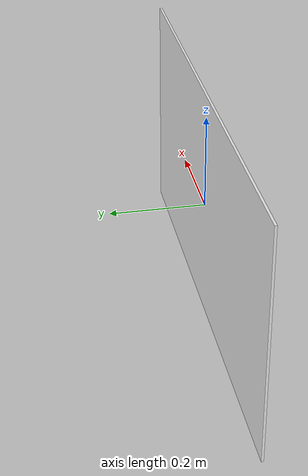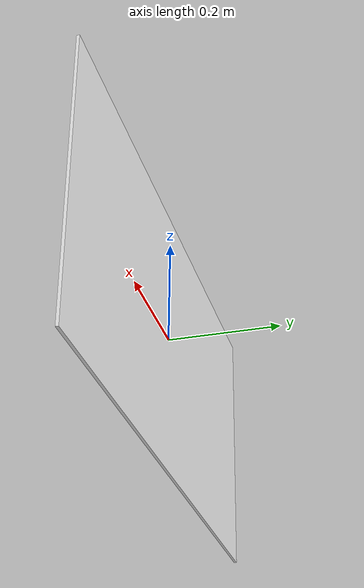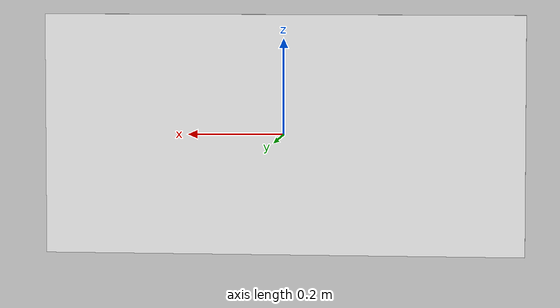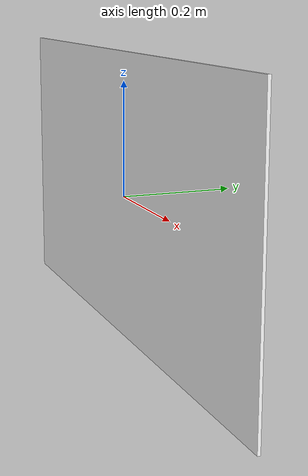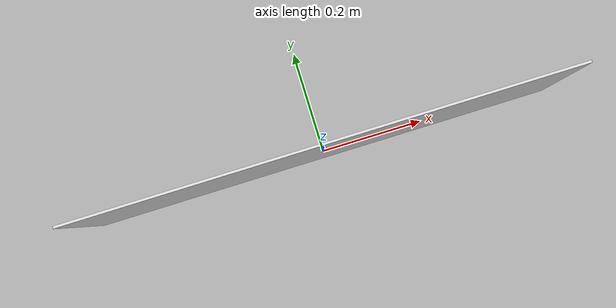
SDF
<?xml version="1.0"?>
<sdf version="1.6">
  <model name="wall_segment">
    <static>true</static>
    <link name="link">
      <collision name="collision">
        <geometry>
          <box>
            <size>1 0.005 0.5</size>
          </box>
        </geometry>
      </collision>
      <visual name="visual">
        <geometry>
          <box>
            <size>1 0.005 0.5</size>
          </box>
        </geometry>
        <material>
          <script>
            <uri>file://media/materials/scripts/gazebo.material</uri>
            <name>Gazebo/White</name>
          </script>
        </material>
      </visual>
    </link>
  </model>
</sdf>
